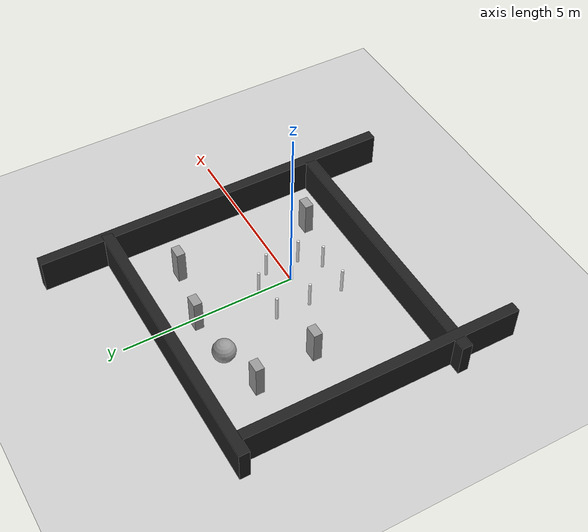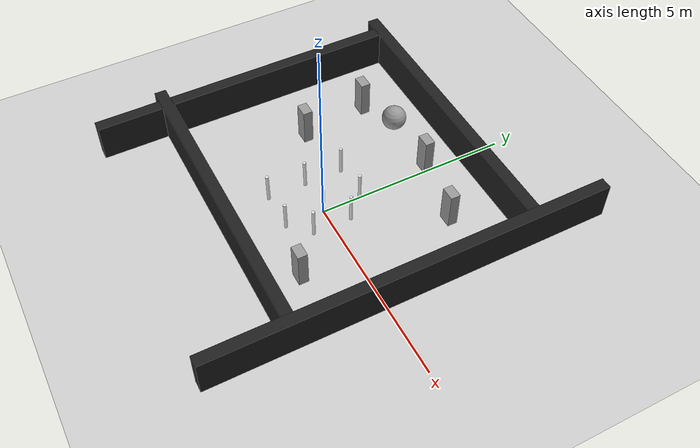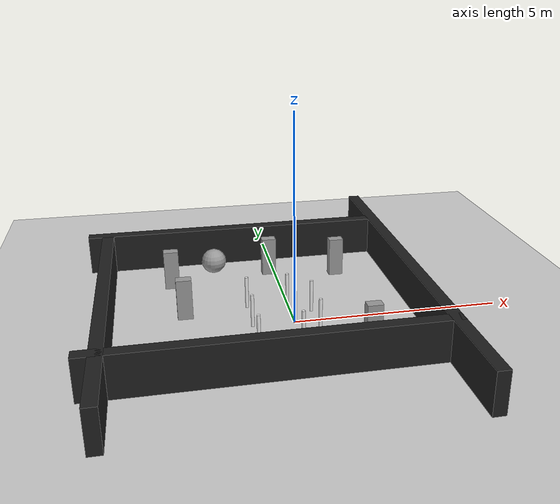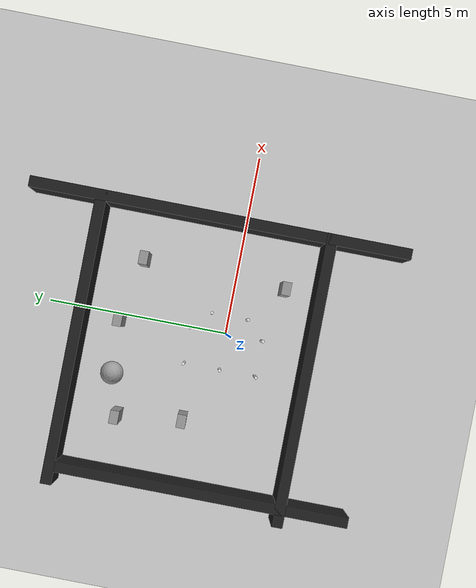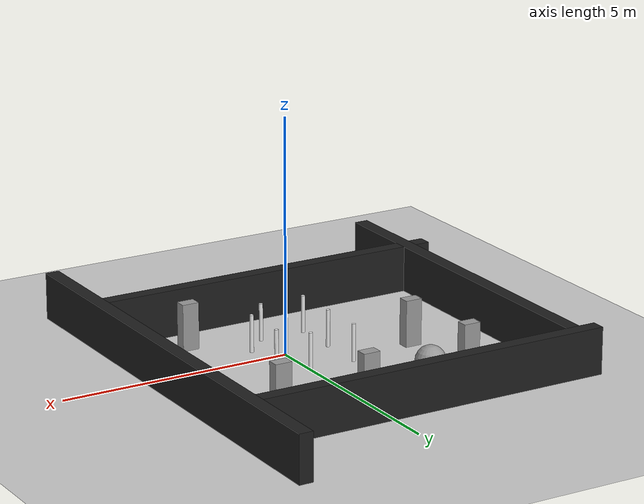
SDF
<sdf version='1.4'>
  <world name='default'>
    <!-- A global light source -->
    <include>
      <uri>model://sun</uri>
    </include>

    <!-- A ground plane -->
    <include>
      <uri>model://ground_plane</uri>
    </include>

    <physics type="ode">
      <real_time_update_rate>1000.0</real_time_update_rate>
      <max_step_size>0.001</max_step_size>
      <real_time_factor>1</real_time_factor>
      <ode>
        <solver>
          <type>quick</type>
          <iters>150</iters>
          <precon_iters>0</precon_iters>
          <sor>1.400000</sor>
          <use_dynamic_moi_rescaling>1</use_dynamic_moi_rescaling>
        </solver>
        <constraints>
          <cfm>0.00001</cfm>
          <erp>0.2</erp>
          <contact_max_correcting_vel>2000.000000</contact_max_correcting_vel>
          <contact_surface_layer>0.01000</contact_surface_layer>
        </constraints>
      </ode>
    </physics>

    <!-- Load world -->
    <include>
      <uri>model://custom</uri>
    </include>

    <scene>
      <ambient>0.4 0.4 0.4 1</ambient>
      <background>0.7 0.7 0.7 1</background>
      <shadows>true</shadows>
    </scene>

    <gui fullscreen='0'>
      <camera name='user_camera'>
        <pose>-0.27 0.0 5.0 0 1.5708 1.5708</pose>
        <view_controller>orbit</view_controller>
      </camera>
    </gui>
  </world>
</sdf>

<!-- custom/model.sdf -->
<sdf version='1.7'>
  <model name='db_world'>
    <link name='link_d_left'>
      <pose>-4.33832 -0.14025 0.5 0 -0 0</pose>
      <self_collide>0</self_collide>
      <enable_wind>0</enable_wind>
      <kinematic>0</kinematic>
      <visual name='visual'>
        <pose>0 0 0 0 -0 0</pose>
        <geometry>
          <box>
            <size>0.3 8 1</size>
          </box>
        </geometry>
        <material>
          <script>
            <uri>file://media/materials/scripts/gazebo.material</uri>
            <name>Gazebo/Black</name>
          </script>
          <shader type='pixel'/>
        </material>
        <transparency>0</transparency>
        <cast_shadows>1</cast_shadows>
      </visual>
      <collision name='collision'>
        <laser_retro>0</laser_retro>
        <max_contacts>10</max_contacts>
        <pose>0 0 0 0 -0 0</pose>
        <geometry>
          <box>
            <size>0.3 8 1</size>
          </box>
        </geometry>
        <surface>
          <friction>
            <ode>
              <mu>1</mu>
              <mu2>1</mu2>
              <fdir1>0 0 0</fdir1>
              <slip1>0</slip1>
              <slip2>0</slip2>
            </ode>
            <torsional>
              <coefficient>1</coefficient>
              <patch_radius>0</patch_radius>
              <surface_radius>0</surface_radius>
              <use_patch_radius>1</use_patch_radius>
              <ode>
                <slip>0</slip>
              </ode>
            </torsional>
          </friction>
          <bounce>
            <restitution_coefficient>0</restitution_coefficient>
            <threshold>1e+06</threshold>
          </bounce>
          <contact>
            <collide_without_contact>0</collide_without_contact>
            <collide_without_contact_bitmask>1</collide_without_contact_bitmask>
            <collide_bitmask>1</collide_bitmask>
            <ode>
              <soft_cfm>0</soft_cfm>
              <soft_erp>0.2</soft_erp>
              <kp>1e+13</kp>
              <kd>1</kd>
              <max_vel>0.01</max_vel>
              <min_depth>0</min_depth>
            </ode>
            <bullet>
              <split_impulse>1</split_impulse>
              <split_impulse_penetration_threshold>-0.01</split_impulse_penetration_threshold>
              <soft_cfm>0</soft_cfm>
              <soft_erp>0.2</soft_erp>
              <kp>1e+13</kp>
              <kd>1</kd>
            </bullet>
          </contact>
        </surface>
      </collision>
    </link>
    <link name='link_0'>
      <inertial>
        <mass>0.0896006</mass>
        <inertia>
          <ixx>0.00791698</ixx>
          <ixy>0</ixy>
          <ixz>0</ixz>
          <iyy>0.00846071</iyy>
          <iyz>0</iyz>
          <izz>0.00144426</izz>
        </inertia>
        <pose>0 0 0 0 -0 0</pose>
      </inertial>
      <pose>-2.7454 2.54746 0.5 0 -0 0</pose>
      <self_collide>0</self_collide>
      <enable_wind>0</enable_wind>
      <kinematic>0</kinematic>
      <visual name='visual'>
        <pose>0 0 0 0 -0 0</pose>
        <geometry>
          <box>
            <size>0.364861 0.245567 1</size>
          </box>
        </geometry>
        <material>
          <lighting>1</lighting>
          <script>
            <uri>file://media/materials/scripts/gazebo.material</uri>
            <name>Gazebo/Grey</name>
          </script>
          <shader type='pixel'/>
        </material>
        <transparency>0</transparency>
        <cast_shadows>1</cast_shadows>
      </visual>
      <collision name='collision'>
        <laser_retro>0</laser_retro>
        <max_contacts>10</max_contacts>
        <pose>0 0 0 0 -0 0</pose>
        <geometry>
          <box>
            <size>0.364861 0.245567 1</size>
          </box>
        </geometry>
        <surface>
          <friction>
            <ode>
              <mu>1</mu>
              <mu2>1</mu2>
              <fdir1>0 0 0</fdir1>
              <slip1>0</slip1>
              <slip2>0</slip2>
            </ode>
            <torsional>
              <coefficient>1</coefficient>
              <patch_radius>0</patch_radius>
              <surface_radius>0</surface_radius>
              <use_patch_radius>1</use_patch_radius>
              <ode>
                <slip>0</slip>
              </ode>
            </torsional>
          </friction>
          <bounce>
            <restitution_coefficient>0</restitution_coefficient>
            <threshold>1e+06</threshold>
          </bounce>
          <contact>
            <collide_without_contact>0</collide_without_contact>
            <collide_without_contact_bitmask>1</collide_without_contact_bitmask>
            <collide_bitmask>1</collide_bitmask>
            <ode>
              <soft_cfm>0</soft_cfm>
              <soft_erp>0.2</soft_erp>
              <kp>1e+13</kp>
              <kd>1</kd>
              <max_vel>0.01</max_vel>
              <min_depth>0</min_depth>
            </ode>
            <bullet>
              <split_impulse>1</split_impulse>
              <split_impulse_penetration_threshold>-0.01</split_impulse_penetration_threshold>
              <soft_cfm>0</soft_cfm>
              <soft_erp>0.2</soft_erp>
              <kp>1e+13</kp>
              <kd>1</kd>
            </bullet>
          </contact>
        </surface>
      </collision>
    </link>
    <link name='link_0_clone'>
      <inertial>
        <mass>0.0896006</mass>
        <inertia>
          <ixx>0.00791698</ixx>
          <ixy>0</ixy>
          <ixz>0</ixz>
          <iyy>0.00846071</iyy>
          <iyz>0</iyz>
          <izz>0.00144426</izz>
        </inertia>
        <pose>0 0 0 0 -0 0</pose>
      </inertial>
      <pose>-2.51361 0.75647 0.5 0 -0 0</pose>
      <self_collide>0</self_collide>
      <enable_wind>0</enable_wind>
      <kinematic>0</kinematic>
      <visual name='visual'>
        <pose>0 0 0 0 -0 0</pose>
        <geometry>
          <box>
            <size>0.364861 0.245567 1</size>
          </box>
        </geometry>
        <material>
          <lighting>1</lighting>
          <script>
            <uri>file://media/materials/scripts/gazebo.material</uri>
            <name>Gazebo/Grey</name>
          </script>
          <shader type='pixel'/>
        </material>
        <transparency>0</transparency>
        <cast_shadows>1</cast_shadows>
      </visual>
      <collision name='collision'>
        <laser_retro>0</laser_retro>
        <max_contacts>10</max_contacts>
        <pose>0 0 0 0 -0 0</pose>
        <geometry>
          <box>
            <size>0.364861 0.245567 1</size>
          </box>
        </geometry>
        <surface>
          <friction>
            <ode>
              <mu>1</mu>
              <mu2>1</mu2>
              <fdir1>0 0 0</fdir1>
              <slip1>0</slip1>
              <slip2>0</slip2>
            </ode>
            <torsional>
              <coefficient>1</coefficient>
              <patch_radius>0</patch_radius>
              <surface_radius>0</surface_radius>
              <use_patch_radius>1</use_patch_radius>
              <ode>
                <slip>0</slip>
              </ode>
            </torsional>
          </friction>
          <bounce>
            <restitution_coefficient>0</restitution_coefficient>
            <threshold>1e+06</threshold>
          </bounce>
          <contact>
            <collide_without_contact>0</collide_without_contact>
            <collide_without_contact_bitmask>1</collide_without_contact_bitmask>
            <collide_bitmask>1</collide_bitmask>
            <ode>
              <soft_cfm>0</soft_cfm>
              <soft_erp>0.2</soft_erp>
              <kp>1e+13</kp>
              <kd>1</kd>
              <max_vel>0.01</max_vel>
              <min_depth>0</min_depth>
            </ode>
            <bullet>
              <split_impulse>1</split_impulse>
              <split_impulse_penetration_threshold>-0.01</split_impulse_penetration_threshold>
              <soft_cfm>0</soft_cfm>
              <soft_erp>0.2</soft_erp>
              <kp>1e+13</kp>
              <kd>1</kd>
            </bullet>
          </contact>
        </surface>
      </collision>
    </link>
    <link name='link_0_clone_0'>
      <inertial>
        <mass>0.0896006</mass>
        <inertia>
          <ixx>0.00791698</ixx>
          <ixy>0</ixy>
          <ixz>0</ixz>
          <iyy>0.00846071</iyy>
          <iyz>0</iyz>
          <izz>0.00144426</izz>
        </inertia>
        <pose>0 0 0 0 -0 0</pose>
      </inertial>
      <pose>-0.153443 2.95101 0.5 0 -0 0</pose>
      <self_collide>0</self_collide>
      <enable_wind>0</enable_wind>
      <kinematic>0</kinematic>
      <visual name='visual'>
        <pose>0 0 0 0 -0 0</pose>
        <geometry>
          <box>
            <size>0.364861 0.245567 1</size>
          </box>
        </geometry>
        <material>
          <lighting>1</lighting>
          <script>
            <uri>file://media/materials/scripts/gazebo.material</uri>
            <name>Gazebo/Grey</name>
          </script>
          <shader type='pixel'/>
        </material>
        <transparency>0</transparency>
        <cast_shadows>1</cast_shadows>
      </visual>
      <collision name='collision'>
        <laser_retro>0</laser_retro>
        <max_contacts>10</max_contacts>
        <pose>0 0 0 0 -0 0</pose>
        <geometry>
          <box>
            <size>0.364861 0.245567 1</size>
          </box>
        </geometry>
        <surface>
          <friction>
            <ode>
              <mu>1</mu>
              <mu2>1</mu2>
              <fdir1>0 0 0</fdir1>
              <slip1>0</slip1>
              <slip2>0</slip2>
            </ode>
            <torsional>
              <coefficient>1</coefficient>
              <patch_radius>0</patch_radius>
              <surface_radius>0</surface_radius>
              <use_patch_radius>1</use_patch_radius>
              <ode>
                <slip>0</slip>
              </ode>
            </torsional>
          </friction>
          <bounce>
            <restitution_coefficient>0</restitution_coefficient>
            <threshold>1e+06</threshold>
          </bounce>
          <contact>
            <collide_without_contact>0</collide_without_contact>
            <collide_without_contact_bitmask>1</collide_without_contact_bitmask>
            <collide_bitmask>1</collide_bitmask>
            <ode>
              <soft_cfm>0</soft_cfm>
              <soft_erp>0.2</soft_erp>
              <kp>1e+13</kp>
              <kd>1</kd>
              <max_vel>0.01</max_vel>
              <min_depth>0</min_depth>
            </ode>
            <bullet>
              <split_impulse>1</split_impulse>
              <split_impulse_penetration_threshold>-0.01</split_impulse_penetration_threshold>
              <soft_cfm>0</soft_cfm>
              <soft_erp>0.2</soft_erp>
              <kp>1e+13</kp>
              <kd>1</kd>
            </bullet>
          </contact>
        </surface>
      </collision>
    </link>
    <link name='link_0_clone_1'>
      <inertial>
        <mass>0.0896006</mass>
        <inertia>
          <ixx>0.00791698</ixx>
          <ixy>0</ixy>
          <ixz>0</ixz>
          <iyy>0.00846071</iyy>
          <iyz>0</iyz>
          <izz>0.00144426</izz>
        </inertia>
        <pose>0 0 0 0 -0 0</pose>
      </inertial>
      <pose>1.50971 -1.3379 0.5 0 -0 0</pose>
      <self_collide>0</self_collide>
      <enable_wind>0</enable_wind>
      <kinematic>0</kinematic>
      <visual name='visual'>
        <pose>0 0 0 0 -0 0</pose>
        <geometry>
          <box>
            <size>0.364861 0.245567 1</size>
          </box>
        </geometry>
        <material>
          <lighting>1</lighting>
          <script>
            <uri>file://media/materials/scripts/gazebo.material</uri>
            <name>Gazebo/Grey</name>
          </script>
          <shader type='pixel'/>
        </material>
        <transparency>0</transparency>
        <cast_shadows>1</cast_shadows>
      </visual>
      <collision name='collision'>
        <laser_retro>0</laser_retro>
        <max_contacts>10</max_contacts>
        <pose>0 0 0 0 -0 0</pose>
        <geometry>
          <box>
            <size>0.364861 0.245567 1</size>
          </box>
        </geometry>
        <surface>
          <friction>
            <ode>
              <mu>1</mu>
              <mu2>1</mu2>
              <fdir1>0 0 0</fdir1>
              <slip1>0</slip1>
              <slip2>0</slip2>
            </ode>
            <torsional>
              <coefficient>1</coefficient>
              <patch_radius>0</patch_radius>
              <surface_radius>0</surface_radius>
              <use_patch_radius>1</use_patch_radius>
              <ode>
                <slip>0</slip>
              </ode>
            </torsional>
          </friction>
          <bounce>
            <restitution_coefficient>0</restitution_coefficient>
            <threshold>1e+06</threshold>
          </bounce>
          <contact>
            <collide_without_contact>0</collide_without_contact>
            <collide_without_contact_bitmask>1</collide_without_contact_bitmask>
            <collide_bitmask>1</collide_bitmask>
            <ode>
              <soft_cfm>0</soft_cfm>
              <soft_erp>0.2</soft_erp>
              <kp>1e+13</kp>
              <kd>1</kd>
              <max_vel>0.01</max_vel>
              <min_depth>0</min_depth>
            </ode>
            <bullet>
              <split_impulse>1</split_impulse>
              <split_impulse_penetration_threshold>-0.01</split_impulse_penetration_threshold>
              <soft_cfm>0</soft_cfm>
              <soft_erp>0.2</soft_erp>
              <kp>1e+13</kp>
              <kd>1</kd>
            </bullet>
          </contact>
        </surface>
      </collision>
    </link>
    <link name='link_0_clone_2'>
      <inertial>
        <mass>0.0896006</mass>
        <inertia>
          <ixx>0.00791698</ixx>
          <ixy>0</ixy>
          <ixz>0</ixz>
          <iyy>0.00846071</iyy>
          <iyz>0</iyz>
          <izz>0.00144426</izz>
        </inertia>
        <pose>0 0 0 0 -0 0</pose>
      </inertial>
      <pose>1.60175 2.58071 0.5 0 -0 0</pose>
      <self_collide>0</self_collide>
      <enable_wind>0</enable_wind>
      <kinematic>0</kinematic>
      <visual name='visual'>
        <pose>0 0 0 0 -0 0</pose>
        <geometry>
          <box>
            <size>0.364861 0.245567 1</size>
          </box>
        </geometry>
        <material>
          <lighting>1</lighting>
          <script>
            <uri>file://media/materials/scripts/gazebo.material</uri>
            <name>Gazebo/Grey</name>
          </script>
          <shader type='pixel'/>
        </material>
        <transparency>0</transparency>
        <cast_shadows>1</cast_shadows>
      </visual>
      <collision name='collision'>
        <laser_retro>0</laser_retro>
        <max_contacts>10</max_contacts>
        <pose>0 0 0 0 -0 0</pose>
        <geometry>
          <box>
            <size>0.364861 0.245567 1</size>
          </box>
        </geometry>
        <surface>
          <friction>
            <ode>
              <mu>1</mu>
              <mu2>1</mu2>
              <fdir1>0 0 0</fdir1>
              <slip1>0</slip1>
              <slip2>0</slip2>
            </ode>
            <torsional>
              <coefficient>1</coefficient>
              <patch_radius>0</patch_radius>
              <surface_radius>0</surface_radius>
              <use_patch_radius>1</use_patch_radius>
              <ode>
                <slip>0</slip>
              </ode>
            </torsional>
          </friction>
          <bounce>
            <restitution_coefficient>0</restitution_coefficient>
            <threshold>1e+06</threshold>
          </bounce>
          <contact>
            <collide_without_contact>0</collide_without_contact>
            <collide_without_contact_bitmask>1</collide_without_contact_bitmask>
            <collide_bitmask>1</collide_bitmask>
            <ode>
              <soft_cfm>0</soft_cfm>
              <soft_erp>0.2</soft_erp>
              <kp>1e+13</kp>
              <kd>1</kd>
              <max_vel>0.01</max_vel>
              <min_depth>0</min_depth>
            </ode>
            <bullet>
              <split_impulse>1</split_impulse>
              <split_impulse_penetration_threshold>-0.01</split_impulse_penetration_threshold>
              <soft_cfm>0</soft_cfm>
              <soft_erp>0.2</soft_erp>
              <kp>1e+13</kp>
              <kd>1</kd>
            </bullet>
          </contact>
        </surface>
      </collision>
    </link>
    <link name='link_1'>
      <inertial>
        <mass>0.255278</mass>
        <inertia>
          <ixx>0.0102727</ixx>
          <ixy>0</ixy>
          <ixz>0</ixz>
          <iyy>0.0102727</iyy>
          <iyz>0</iyz>
          <izz>0.0102727</izz>
        </inertia>
        <pose>0 0 0 0 -0 0</pose>
      </inertial>
      <pose>-1.62553 2.88169 0.5 0 -0 0</pose>
      <self_collide>0</self_collide>
      <enable_wind>0</enable_wind>
      <kinematic>0</kinematic>
      <visual name='visual'>
        <pose>0 0 0 0 -0 0</pose>
        <geometry>
          <sphere>
            <radius>0.31718</radius>
          </sphere>
        </geometry>
        <material>
          <lighting>1</lighting>
          <script>
            <uri>file://media/materials/scripts/gazebo.material</uri>
            <name>Gazebo/Grey</name>
          </script>
          <shader type='pixel'/>
        </material>
        <transparency>0</transparency>
        <cast_shadows>1</cast_shadows>
      </visual>
      <collision name='collision'>
        <laser_retro>0</laser_retro>
        <max_contacts>10</max_contacts>
        <pose>0 0 0 0 -0 0</pose>
        <geometry>
          <sphere>
            <radius>0.31718</radius>
          </sphere>
        </geometry>
        <surface>
          <friction>
            <ode>
              <mu>1</mu>
              <mu2>1</mu2>
              <fdir1>0 0 0</fdir1>
              <slip1>0</slip1>
              <slip2>0</slip2>
            </ode>
            <torsional>
              <coefficient>1</coefficient>
              <patch_radius>0</patch_radius>
              <surface_radius>0</surface_radius>
              <use_patch_radius>1</use_patch_radius>
              <ode>
                <slip>0</slip>
              </ode>
            </torsional>
          </friction>
          <bounce>
            <restitution_coefficient>0</restitution_coefficient>
            <threshold>1e+06</threshold>
          </bounce>
          <contact>
            <collide_without_contact>0</collide_without_contact>
            <collide_without_contact_bitmask>1</collide_without_contact_bitmask>
            <collide_bitmask>1</collide_bitmask>
            <ode>
              <soft_cfm>0</soft_cfm>
              <soft_erp>0.2</soft_erp>
              <kp>1e+13</kp>
              <kd>1</kd>
              <max_vel>0.01</max_vel>
              <min_depth>0</min_depth>
            </ode>
            <bullet>
              <split_impulse>1</split_impulse>
              <split_impulse_penetration_threshold>-0.01</split_impulse_penetration_threshold>
              <soft_cfm>0</soft_cfm>
              <soft_erp>0.2</soft_erp>
              <kp>1e+13</kp>
              <kd>1</kd>
            </bullet>
          </contact>
        </surface>
      </collision>
    </link>
    <link name='link_b'>
      <self_collide>0</self_collide>
      <enable_wind>0</enable_wind>
      <kinematic>0</kinematic>
      <inertial>
        <inertia>
          <ixx>0</ixx>
          <ixy>0</ixy>
          <ixz>0</ixz>
          <iyy>0</iyy>
          <iyz>0</iyz>
          <izz>0</izz>
        </inertia>
        <mass>0</mass>
        <pose>0 0 0 0 -0 0</pose>
      </inertial>
      <pose>0 0 0 0 -0 0</pose>
      <visual name='two_one'>
        <pose>-1 -1 0.4 0 -0 0</pose>
        <geometry>
          <cylinder>
            <radius>0.041074</radius>
            <length>0.8</length>
          </cylinder>
        </geometry>
        <material>
          <script>
            <uri>file://media/materials/scripts/gazebo.material</uri>
            <name>Gazebo/White</name>
          </script>
          <shader type='pixel'/>
        </material>
        <transparency>0</transparency>
        <cast_shadows>1</cast_shadows>
      </visual>
      <visual name='three_one'>
        <pose>0 0 0.4 0 -0 0</pose>
        <geometry>
          <cylinder>
            <radius>0.041074</radius>
            <length>0.8</length>
          </cylinder>
        </geometry>
        <material>
          <script>
            <uri>file://media/materials/scripts/gazebo.material</uri>
            <name>Gazebo/White</name>
          </script>
          <shader type='pixel'/>
        </material>
        <transparency>0</transparency>
        <cast_shadows>1</cast_shadows>
      </visual>
      <visual name='three_two'>
        <pose>0 1 0.4 0 -0 0</pose>
        <geometry>
          <cylinder>
            <radius>0.041074</radius>
            <length>0.8</length>
          </cylinder>
        </geometry>
        <material>
          <script>
            <uri>file://media/materials/scripts/gazebo.material</uri>
            <name>Gazebo/White</name>
          </script>
          <shader type='pixel'/>
        </material>
        <transparency>0</transparency>
        <cast_shadows>1</cast_shadows>
      </visual>
      <visual name='one_two'>
        <pose>-1 0 0.4 0 -0 0</pose>
        <geometry>
          <cylinder>
            <radius>0.041074</radius>
            <length>0.8</length>
          </cylinder>
        </geometry>
        <material>
          <script>
            <uri>file://media/materials/scripts/gazebo.material</uri>
            <name>Gazebo/White</name>
          </script>
          <shader type='pixel'/>
        </material>
        <transparency>0</transparency>
        <cast_shadows>1</cast_shadows>
      </visual>
      <visual name='five'>
        <pose>0.5 -0.5 0.4 0 -0 0</pose>
        <geometry>
          <cylinder>
            <radius>0.041074</radius>
            <length>0.8</length>
          </cylinder>
        </geometry>
        <material>
          <script>
            <uri>file://media/materials/scripts/gazebo.material</uri>
            <name>Gazebo/White</name>
          </script>
          <shader type='pixel'/>
        </material>
        <transparency>0</transparency>
        <cast_shadows>1</cast_shadows>
      </visual>
      <visual name='one_one'>
        <pose>-1 1 0.4 0 -0 0</pose>
        <geometry>
          <cylinder>
            <radius>0.041074</radius>
            <length>0.8</length>
          </cylinder>
        </geometry>
        <material>
          <script>
            <uri>file://media/materials/scripts/gazebo.material</uri>
            <name>Gazebo/White</name>
          </script>
          <shader type='pixel'/>
        </material>
        <transparency>0</transparency>
        <cast_shadows>1</cast_shadows>
      </visual>
      <visual name='two_two'>
        <pose>0 -1 0.4 0 -0 0</pose>
        <geometry>
          <cylinder>
            <radius>0.041074</radius>
            <length>0.8</length>
          </cylinder>
        </geometry>
        <material>
          <script>
            <uri>file://media/materials/scripts/gazebo.material</uri>
            <name>Gazebo/White</name>
          </script>
          <shader type='pixel'/>
        </material>
        <transparency>0</transparency>
        <cast_shadows>1</cast_shadows>
      </visual>
      <visual name='four'>
        <pose>0.5 0.5 0.4 0 -0 0</pose>
        <geometry>
          <cylinder>
            <radius>0.041074</radius>
            <length>0.8</length>
          </cylinder>
        </geometry>
        <material>
          <script>
            <uri>file://media/materials/scripts/gazebo.material</uri>
            <name>Gazebo/White</name>
          </script>
          <shader type='pixel'/>
        </material>
        <transparency>0</transparency>
        <cast_shadows>1</cast_shadows>
      </visual>
      <collision name='one_one'>
        <laser_retro>0</laser_retro>
        <max_contacts>10</max_contacts>
        <pose>-1 1 0.4 0 -0 0</pose>
        <geometry>
          <cylinder>
            <radius>0.041074</radius>
            <length>0.8</length>
          </cylinder>
        </geometry>
        <surface>
          <friction>
            <ode>
              <mu>1</mu>
              <mu2>1</mu2>
              <fdir1>0 0 0</fdir1>
              <slip1>0</slip1>
              <slip2>0</slip2>
            </ode>
            <torsional>
              <coefficient>1</coefficient>
              <patch_radius>0</patch_radius>
              <surface_radius>0</surface_radius>
              <use_patch_radius>1</use_patch_radius>
              <ode>
                <slip>0</slip>
              </ode>
            </torsional>
          </friction>
          <bounce>
            <restitution_coefficient>0</restitution_coefficient>
            <threshold>1e+06</threshold>
          </bounce>
          <contact>
            <collide_without_contact>0</collide_without_contact>
            <collide_without_contact_bitmask>1</collide_without_contact_bitmask>
            <collide_bitmask>1</collide_bitmask>
            <ode>
              <soft_cfm>0</soft_cfm>
              <soft_erp>0.2</soft_erp>
              <kp>1e+13</kp>
              <kd>1</kd>
              <max_vel>0.01</max_vel>
              <min_depth>0</min_depth>
            </ode>
            <bullet>
              <split_impulse>1</split_impulse>
              <split_impulse_penetration_threshold>-0.01</split_impulse_penetration_threshold>
              <soft_cfm>0</soft_cfm>
              <soft_erp>0.2</soft_erp>
              <kp>1e+13</kp>
              <kd>1</kd>
            </bullet>
          </contact>
        </surface>
      </collision>
      <collision name='two_one'>
        <laser_retro>0</laser_retro>
        <max_contacts>10</max_contacts>
        <pose>-1 -1 0.4 0 -0 0</pose>
        <geometry>
          <cylinder>
            <radius>0.041074</radius>
            <length>0.8</length>
          </cylinder>
        </geometry>
        <surface>
          <friction>
            <ode>
              <mu>1</mu>
              <mu2>1</mu2>
              <fdir1>0 0 0</fdir1>
              <slip1>0</slip1>
              <slip2>0</slip2>
            </ode>
            <torsional>
              <coefficient>1</coefficient>
              <patch_radius>0</patch_radius>
              <surface_radius>0</surface_radius>
              <use_patch_radius>1</use_patch_radius>
              <ode>
                <slip>0</slip>
              </ode>
            </torsional>
          </friction>
          <bounce>
            <restitution_coefficient>0</restitution_coefficient>
            <threshold>1e+06</threshold>
          </bounce>
          <contact>
            <collide_without_contact>0</collide_without_contact>
            <collide_without_contact_bitmask>1</collide_without_contact_bitmask>
            <collide_bitmask>1</collide_bitmask>
            <ode>
              <soft_cfm>0</soft_cfm>
              <soft_erp>0.2</soft_erp>
              <kp>1e+13</kp>
              <kd>1</kd>
              <max_vel>0.01</max_vel>
              <min_depth>0</min_depth>
            </ode>
            <bullet>
              <split_impulse>1</split_impulse>
              <split_impulse_penetration_threshold>-0.01</split_impulse_penetration_threshold>
              <soft_cfm>0</soft_cfm>
              <soft_erp>0.2</soft_erp>
              <kp>1e+13</kp>
              <kd>1</kd>
            </bullet>
          </contact>
        </surface>
      </collision>
      <collision name='three_two'>
        <laser_retro>0</laser_retro>
        <max_contacts>10</max_contacts>
        <pose>0 1 0.4 0 -0 0</pose>
        <geometry>
          <cylinder>
            <radius>0.041074</radius>
            <length>0.8</length>
          </cylinder>
        </geometry>
        <surface>
          <friction>
            <ode>
              <mu>1</mu>
              <mu2>1</mu2>
              <fdir1>0 0 0</fdir1>
              <slip1>0</slip1>
              <slip2>0</slip2>
            </ode>
            <torsional>
              <coefficient>1</coefficient>
              <patch_radius>0</patch_radius>
              <surface_radius>0</surface_radius>
              <use_patch_radius>1</use_patch_radius>
              <ode>
                <slip>0</slip>
              </ode>
            </torsional>
          </friction>
          <bounce>
            <restitution_coefficient>0</restitution_coefficient>
            <threshold>1e+06</threshold>
          </bounce>
          <contact>
            <collide_without_contact>0</collide_without_contact>
            <collide_without_contact_bitmask>1</collide_without_contact_bitmask>
            <collide_bitmask>1</collide_bitmask>
            <ode>
              <soft_cfm>0</soft_cfm>
              <soft_erp>0.2</soft_erp>
              <kp>1e+13</kp>
              <kd>1</kd>
              <max_vel>0.01</max_vel>
              <min_depth>0</min_depth>
            </ode>
            <bullet>
              <split_impulse>1</split_impulse>
              <split_impulse_penetration_threshold>-0.01</split_impulse_penetration_threshold>
              <soft_cfm>0</soft_cfm>
              <soft_erp>0.2</soft_erp>
              <kp>1e+13</kp>
              <kd>1</kd>
            </bullet>
          </contact>
        </surface>
      </collision>
      <collision name='two_two'>
        <laser_retro>0</laser_retro>
        <max_contacts>10</max_contacts>
        <pose>0 -1 0.4 0 -0 0</pose>
        <geometry>
          <cylinder>
            <radius>0.041074</radius>
            <length>0.8</length>
          </cylinder>
        </geometry>
        <surface>
          <friction>
            <ode>
              <mu>1</mu>
              <mu2>1</mu2>
              <fdir1>0 0 0</fdir1>
              <slip1>0</slip1>
              <slip2>0</slip2>
            </ode>
            <torsional>
              <coefficient>1</coefficient>
              <patch_radius>0</patch_radius>
              <surface_radius>0</surface_radius>
              <use_patch_radius>1</use_patch_radius>
              <ode>
                <slip>0</slip>
              </ode>
            </torsional>
          </friction>
          <bounce>
            <restitution_coefficient>0</restitution_coefficient>
            <threshold>1e+06</threshold>
          </bounce>
          <contact>
            <collide_without_contact>0</collide_without_contact>
            <collide_without_contact_bitmask>1</collide_without_contact_bitmask>
            <collide_bitmask>1</collide_bitmask>
            <ode>
              <soft_cfm>0</soft_cfm>
              <soft_erp>0.2</soft_erp>
              <kp>1e+13</kp>
              <kd>1</kd>
              <max_vel>0.01</max_vel>
              <min_depth>0</min_depth>
            </ode>
            <bullet>
              <split_impulse>1</split_impulse>
              <split_impulse_penetration_threshold>-0.01</split_impulse_penetration_threshold>
              <soft_cfm>0</soft_cfm>
              <soft_erp>0.2</soft_erp>
              <kp>1e+13</kp>
              <kd>1</kd>
            </bullet>
          </contact>
        </surface>
      </collision>
      <collision name='five'>
        <laser_retro>0</laser_retro>
        <max_contacts>10</max_contacts>
        <pose>0.5 -0.5 0.4 0 -0 0</pose>
        <geometry>
          <cylinder>
            <radius>0.041074</radius>
            <length>0.8</length>
          </cylinder>
        </geometry>
        <surface>
          <friction>
            <ode>
              <mu>1</mu>
              <mu2>1</mu2>
              <fdir1>0 0 0</fdir1>
              <slip1>0</slip1>
              <slip2>0</slip2>
            </ode>
            <torsional>
              <coefficient>1</coefficient>
              <patch_radius>0</patch_radius>
              <surface_radius>0</surface_radius>
              <use_patch_radius>1</use_patch_radius>
              <ode>
                <slip>0</slip>
              </ode>
            </torsional>
          </friction>
          <bounce>
            <restitution_coefficient>0</restitution_coefficient>
            <threshold>1e+06</threshold>
          </bounce>
          <contact>
            <collide_without_contact>0</collide_without_contact>
            <collide_without_contact_bitmask>1</collide_without_contact_bitmask>
            <collide_bitmask>1</collide_bitmask>
            <ode>
              <soft_cfm>0</soft_cfm>
              <soft_erp>0.2</soft_erp>
              <kp>1e+13</kp>
              <kd>1</kd>
              <max_vel>0.01</max_vel>
              <min_depth>0</min_depth>
            </ode>
            <bullet>
              <split_impulse>1</split_impulse>
              <split_impulse_penetration_threshold>-0.01</split_impulse_penetration_threshold>
              <soft_cfm>0</soft_cfm>
              <soft_erp>0.2</soft_erp>
              <kp>1e+13</kp>
              <kd>1</kd>
            </bullet>
          </contact>
        </surface>
      </collision>
      <collision name='three_one'>
        <laser_retro>0</laser_retro>
        <max_contacts>10</max_contacts>
        <pose>0 0 0.4 0 -0 0</pose>
        <geometry>
          <cylinder>
            <radius>0.041074</radius>
            <length>0.8</length>
          </cylinder>
        </geometry>
        <surface>
          <friction>
            <ode>
              <mu>1</mu>
              <mu2>1</mu2>
              <fdir1>0 0 0</fdir1>
              <slip1>0</slip1>
              <slip2>0</slip2>
            </ode>
            <torsional>
              <coefficient>1</coefficient>
              <patch_radius>0</patch_radius>
              <surface_radius>0</surface_radius>
              <use_patch_radius>1</use_patch_radius>
              <ode>
                <slip>0</slip>
              </ode>
            </torsional>
          </friction>
          <bounce>
            <restitution_coefficient>0</restitution_coefficient>
            <threshold>1e+06</threshold>
          </bounce>
          <contact>
            <collide_without_contact>0</collide_without_contact>
            <collide_without_contact_bitmask>1</collide_without_contact_bitmask>
            <collide_bitmask>1</collide_bitmask>
            <ode>
              <soft_cfm>0</soft_cfm>
              <soft_erp>0.2</soft_erp>
              <kp>1e+13</kp>
              <kd>1</kd>
              <max_vel>0.01</max_vel>
              <min_depth>0</min_depth>
            </ode>
            <bullet>
              <split_impulse>1</split_impulse>
              <split_impulse_penetration_threshold>-0.01</split_impulse_penetration_threshold>
              <soft_cfm>0</soft_cfm>
              <soft_erp>0.2</soft_erp>
              <kp>1e+13</kp>
              <kd>1</kd>
            </bullet>
          </contact>
        </surface>
      </collision>
      <collision name='one_two'>
        <laser_retro>0</laser_retro>
        <max_contacts>10</max_contacts>
        <pose>-1 0 0.4 0 -0 0</pose>
        <geometry>
          <cylinder>
            <radius>0.041074</radius>
            <length>0.8</length>
          </cylinder>
        </geometry>
        <surface>
          <friction>
            <ode>
              <mu>1</mu>
              <mu2>1</mu2>
              <fdir1>0 0 0</fdir1>
              <slip1>0</slip1>
              <slip2>0</slip2>
            </ode>
            <torsional>
              <coefficient>1</coefficient>
              <patch_radius>0</patch_radius>
              <surface_radius>0</surface_radius>
              <use_patch_radius>1</use_patch_radius>
              <ode>
                <slip>0</slip>
              </ode>
            </torsional>
          </friction>
          <bounce>
            <restitution_coefficient>0</restitution_coefficient>
            <threshold>1e+06</threshold>
          </bounce>
          <contact>
            <collide_without_contact>0</collide_without_contact>
            <collide_without_contact_bitmask>1</collide_without_contact_bitmask>
            <collide_bitmask>1</collide_bitmask>
            <ode>
              <soft_cfm>0</soft_cfm>
              <soft_erp>0.2</soft_erp>
              <kp>1e+13</kp>
              <kd>1</kd>
              <max_vel>0.01</max_vel>
              <min_depth>0</min_depth>
            </ode>
            <bullet>
              <split_impulse>1</split_impulse>
              <split_impulse_penetration_threshold>-0.01</split_impulse_penetration_threshold>
              <soft_cfm>0</soft_cfm>
              <soft_erp>0.2</soft_erp>
              <kp>1e+13</kp>
              <kd>1</kd>
            </bullet>
          </contact>
        </surface>
      </collision>
      <collision name='four'>
        <laser_retro>0</laser_retro>
        <max_contacts>10</max_contacts>
        <pose>0.5 0.5 0.4 0 -0 0</pose>
        <geometry>
          <cylinder>
            <radius>0.041074</radius>
            <length>0.8</length>
          </cylinder>
        </geometry>
        <surface>
          <friction>
            <ode>
              <mu>1</mu>
              <mu2>1</mu2>
              <fdir1>0 0 0</fdir1>
              <slip1>0</slip1>
              <slip2>0</slip2>
            </ode>
            <torsional>
              <coefficient>1</coefficient>
              <patch_radius>0</patch_radius>
              <surface_radius>0</surface_radius>
              <use_patch_radius>1</use_patch_radius>
              <ode>
                <slip>0</slip>
              </ode>
            </torsional>
          </friction>
          <bounce>
            <restitution_coefficient>0</restitution_coefficient>
            <threshold>1e+06</threshold>
          </bounce>
          <contact>
            <collide_without_contact>0</collide_without_contact>
            <collide_without_contact_bitmask>1</collide_without_contact_bitmask>
            <collide_bitmask>1</collide_bitmask>
            <ode>
              <soft_cfm>0</soft_cfm>
              <soft_erp>0.2</soft_erp>
              <kp>1e+13</kp>
              <kd>1</kd>
              <max_vel>0.01</max_vel>
              <min_depth>0</min_depth>
            </ode>
            <bullet>
              <split_impulse>1</split_impulse>
              <split_impulse_penetration_threshold>-0.01</split_impulse_penetration_threshold>
              <soft_cfm>0</soft_cfm>
              <soft_erp>0.2</soft_erp>
              <kp>1e+13</kp>
              <kd>1</kd>
            </bullet>
          </contact>
        </surface>
      </collision>
    </link>
    <link name='link_d_bottom'>
      <pose>-0.819187 -2.29029 0.5 0 0 -1.5708</pose>
      <self_collide>0</self_collide>
      <enable_wind>0</enable_wind>
      <kinematic>0</kinematic>
      <visual name='visual'>
        <pose>0 0 0 0 -0 0</pose>
        <geometry>
          <box>
            <size>0.3 8 1</size>
          </box>
        </geometry>
        <material>
          <script>
            <uri>file://media/materials/scripts/gazebo.material</uri>
            <name>Gazebo/Black</name>
          </script>
          <shader type='pixel'/>
        </material>
        <transparency>0</transparency>
        <cast_shadows>1</cast_shadows>
      </visual>
      <collision name='collision'>
        <laser_retro>0</laser_retro>
        <max_contacts>10</max_contacts>
        <pose>0 0 0 0 -0 0</pose>
        <geometry>
          <box>
            <size>0.3 8 1</size>
          </box>
        </geometry>
        <surface>
          <friction>
            <ode>
              <mu>1</mu>
              <mu2>1</mu2>
              <fdir1>0 0 0</fdir1>
              <slip1>0</slip1>
              <slip2>0</slip2>
            </ode>
            <torsional>
              <coefficient>1</coefficient>
              <patch_radius>0</patch_radius>
              <surface_radius>0</surface_radius>
              <use_patch_radius>1</use_patch_radius>
              <ode>
                <slip>0</slip>
              </ode>
            </torsional>
          </friction>
          <bounce>
            <restitution_coefficient>0</restitution_coefficient>
            <threshold>1e+06</threshold>
          </bounce>
          <contact>
            <collide_without_contact>0</collide_without_contact>
            <collide_without_contact_bitmask>1</collide_without_contact_bitmask>
            <collide_bitmask>1</collide_bitmask>
            <ode>
              <soft_cfm>0</soft_cfm>
              <soft_erp>0.2</soft_erp>
              <kp>1e+13</kp>
              <kd>1</kd>
              <max_vel>0.01</max_vel>
              <min_depth>0</min_depth>
            </ode>
            <bullet>
              <split_impulse>1</split_impulse>
              <split_impulse_penetration_threshold>-0.01</split_impulse_penetration_threshold>
              <soft_cfm>0</soft_cfm>
              <soft_erp>0.2</soft_erp>
              <kp>1e+13</kp>
              <kd>1</kd>
            </bullet>
          </contact>
        </surface>
      </collision>
    </link>
    <link name='link_d_right'>
      <pose>3.04108 0.756467 0.5 0 -0 0</pose>
      <self_collide>0</self_collide>
      <enable_wind>0</enable_wind>
      <kinematic>0</kinematic>
      <inertial>
        <inertia>
          <ixx>0</ixx>
          <ixy>0</ixy>
          <ixz>0</ixz>
          <iyy>0</iyy>
          <iyz>0</iyz>
          <izz>0</izz>
        </inertia>
        <mass>0</mass>
        <pose>0 0 0 0 -0 0</pose>
      </inertial>
      <visual name='visual'>
        <pose>0 0 0 0 -0 0</pose>
        <geometry>
          <box>
            <size>0.3 10.4405 1</size>
          </box>
        </geometry>
        <material>
          <lighting>1</lighting>
          <script>
            <uri>file://media/materials/scripts/gazebo.material</uri>
            <name>Gazebo/Black</name>
          </script>
          <shader type='pixel'/>
        </material>
        <transparency>0</transparency>
        <cast_shadows>1</cast_shadows>
      </visual>
      <collision name='collision'>
        <laser_retro>0</laser_retro>
        <max_contacts>10</max_contacts>
        <pose>0 0 0 0 -0 0</pose>
        <geometry>
          <box>
            <size>0.3 10.4405 1</size>
          </box>
        </geometry>
        <surface>
          <friction>
            <ode>
              <mu>1</mu>
              <mu2>1</mu2>
              <fdir1>0 0 0</fdir1>
              <slip1>0</slip1>
              <slip2>0</slip2>
            </ode>
            <torsional>
              <coefficient>1</coefficient>
              <patch_radius>0</patch_radius>
              <surface_radius>0</surface_radius>
              <use_patch_radius>1</use_patch_radius>
              <ode>
                <slip>0</slip>
              </ode>
            </torsional>
          </friction>
          <bounce>
            <restitution_coefficient>0</restitution_coefficient>
            <threshold>1e+06</threshold>
          </bounce>
          <contact>
            <collide_without_contact>0</collide_without_contact>
            <collide_without_contact_bitmask>1</collide_without_contact_bitmask>
            <collide_bitmask>1</collide_bitmask>
            <ode>
              <soft_cfm>0</soft_cfm>
              <soft_erp>0.2</soft_erp>
              <kp>1e+13</kp>
              <kd>1</kd>
              <max_vel>0.01</max_vel>
              <min_depth>0</min_depth>
            </ode>
            <bullet>
              <split_impulse>1</split_impulse>
              <split_impulse_penetration_threshold>-0.01</split_impulse_penetration_threshold>
              <soft_cfm>0</soft_cfm>
              <soft_erp>0.2</soft_erp>
              <kp>1e+13</kp>
              <kd>1</kd>
            </bullet>
          </contact>
        </surface>
      </collision>
    </link>
    <link name='link_d_top'>
      <pose>-0.850321 4.00875 0.5 0 0 -1.5708</pose>
      <self_collide>0</self_collide>
      <enable_wind>0</enable_wind>
      <kinematic>0</kinematic>
      <visual name='visual'>
        <pose>0 0 0 0 -0 0</pose>
        <geometry>
          <box>
            <size>0.3 8 1</size>
          </box>
        </geometry>
        <material>
          <lighting>1</lighting>
          <script>
            <uri>file://media/materials/scripts/gazebo.material</uri>
            <name>Gazebo/Black</name>
          </script>
          <shader type='pixel'/>
        </material>
        <transparency>0</transparency>
        <cast_shadows>1</cast_shadows>
      </visual>
      <collision name='collision'>
        <laser_retro>0</laser_retro>
        <max_contacts>10</max_contacts>
        <pose>0 0 0 0 -0 0</pose>
        <geometry>
          <box>
            <size>0.3 8 1</size>
          </box>
        </geometry>
        <surface>
          <friction>
            <ode>
              <mu>1</mu>
              <mu2>1</mu2>
              <fdir1>0 0 0</fdir1>
              <slip1>0</slip1>
              <slip2>0</slip2>
            </ode>
            <torsional>
              <coefficient>1</coefficient>
              <patch_radius>0</patch_radius>
              <surface_radius>0</surface_radius>
              <use_patch_radius>1</use_patch_radius>
              <ode>
                <slip>0</slip>
              </ode>
            </torsional>
          </friction>
          <bounce>
            <restitution_coefficient>0</restitution_coefficient>
            <threshold>1e+06</threshold>
          </bounce>
          <contact>
            <collide_without_contact>0</collide_without_contact>
            <collide_without_contact_bitmask>1</collide_without_contact_bitmask>
            <collide_bitmask>1</collide_bitmask>
            <ode>
              <soft_cfm>0</soft_cfm>
              <soft_erp>0.2</soft_erp>
              <kp>1e+13</kp>
              <kd>1</kd>
              <max_vel>0.01</max_vel>
              <min_depth>0</min_depth>
            </ode>
            <bullet>
              <split_impulse>1</split_impulse>
              <split_impulse_penetration_threshold>-0.01</split_impulse_penetration_threshold>
              <soft_cfm>0</soft_cfm>
              <soft_erp>0.2</soft_erp>
              <kp>1e+13</kp>
              <kd>1</kd>
            </bullet>
          </contact>
        </surface>
      </collision>
    </link>
    <static>1</static>
    <allow_auto_disable>1</allow_auto_disable>
  </model>
</sdf>
